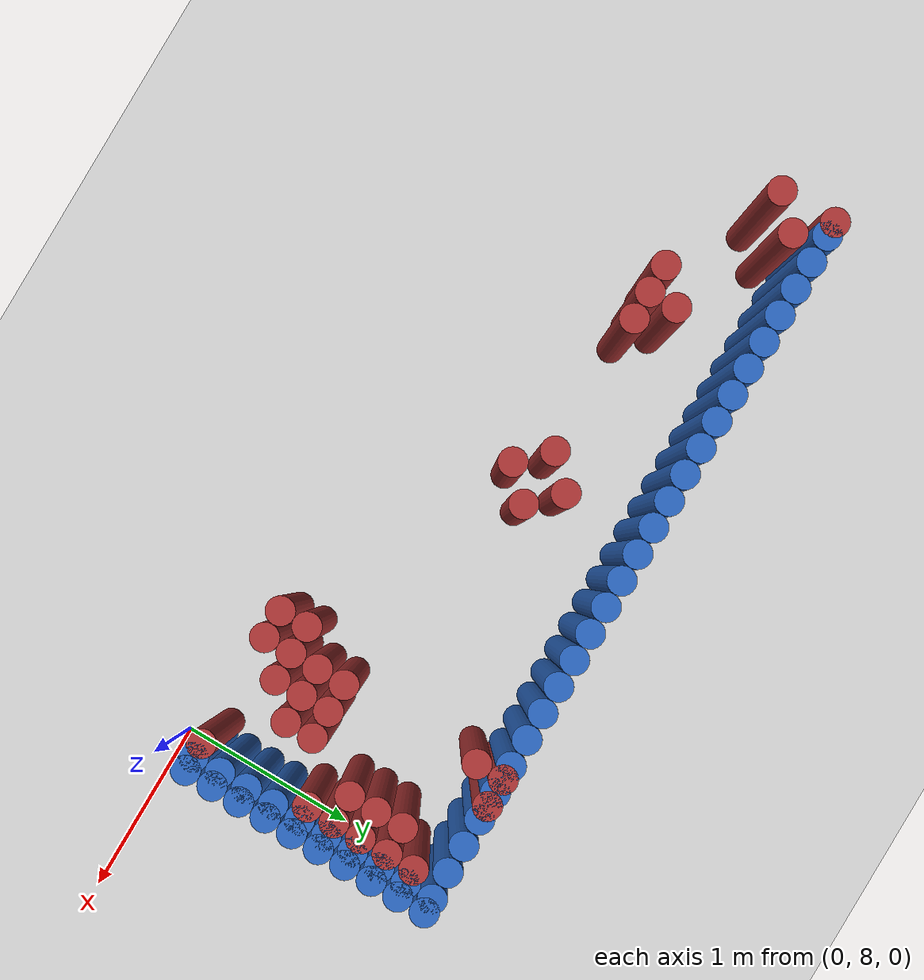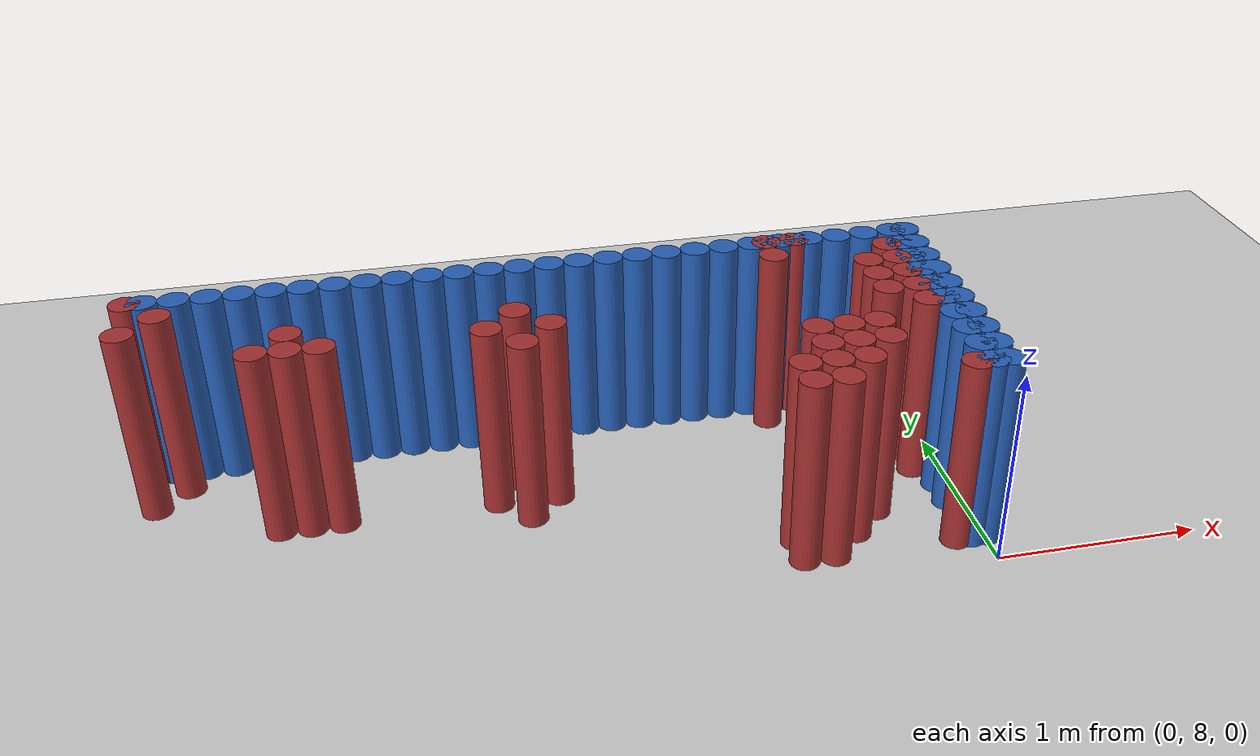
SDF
<sdf version="1.6">
 <world name="barn_world">
  <model name="ground_plane">
   <static>1</static>
   <link name="link">
    <collision name="collision">
     <geometry><plane><normal>0 0 1</normal><size>100 100</size></plane></geometry>
    </collision>
    <visual name="visual">
     <geometry><plane><normal>0 0 1</normal><size>100 100</size></plane></geometry>
     <material>
      <script><uri>file://media/materials/scripts/gazebo.material</uri><name>Gazebo/Grey</name></script>
     </material>
    </visual>
   </link>
  </model>
  <model name="unit_cylinder_181">
   <static>1</static>
   <pose>-3.9000 9.2250 0.5 0 0 0</pose>
   <link name="link">
    <collision name="collision">
     <geometry><cylinder><radius>0.075</radius><length>1</length></cylinder></geometry>
    </collision>
    <visual name="visual">
     <geometry><cylinder><radius>0.075</radius><length>1</length></cylinder></geometry>
     <material><ambient>0.648 0.192 0.192 1</ambient><diffuse>0.648 0.192 0.192 1</diffuse></material>
    </visual>
   </link>
  </model>
  <model name="unit_cylinder_182">
   <static>1</static>
   <pose>-3.9000 9.5250 0.5 0 0 0</pose>
   <link name="link">
    <collision name="collision">
     <geometry><cylinder><radius>0.075</radius><length>1</length></cylinder></geometry>
    </collision>
    <visual name="visual">
     <geometry><cylinder><radius>0.075</radius><length>1</length></cylinder></geometry>
     <material><ambient>0.648 0.192 0.192 1</ambient><diffuse>0.648 0.192 0.192 1</diffuse></material>
    </visual>
   </link>
  </model>
  <model name="unit_cylinder_184">
   <static>1</static>
   <pose>-3.7500 9.3750 0.5 0 0 0</pose>
   <link name="link">
    <collision name="collision">
     <geometry><cylinder><radius>0.075</radius><length>1</length></cylinder></geometry>
    </collision>
    <visual name="visual">
     <geometry><cylinder><radius>0.075</radius><length>1</length></cylinder></geometry>
     <material><ambient>0.648 0.192 0.192 1</ambient><diffuse>0.648 0.192 0.192 1</diffuse></material>
    </visual>
   </link>
  </model>
  <model name="unit_cylinder_188">
   <static>1</static>
   <pose>-3.3000 8.9250 0.5 0 0 0</pose>
   <link name="link">
    <collision name="collision">
     <geometry><cylinder><radius>0.075</radius><length>1</length></cylinder></geometry>
    </collision>
    <visual name="visual">
     <geometry><cylinder><radius>0.075</radius><length>1</length></cylinder></geometry>
     <material><ambient>0.648 0.192 0.192 1</ambient><diffuse>0.648 0.192 0.192 1</diffuse></material>
    </visual>
   </link>
  </model>
  <model name="unit_cylinder_192">
   <static>1</static>
   <pose>-3.1500 8.9250 0.5 0 0 0</pose>
   <link name="link">
    <collision name="collision">
     <geometry><cylinder><radius>0.075</radius><length>1</length></cylinder></geometry>
    </collision>
    <visual name="visual">
     <geometry><cylinder><radius>0.075</radius><length>1</length></cylinder></geometry>
     <material><ambient>0.648 0.192 0.192 1</ambient><diffuse>0.648 0.192 0.192 1</diffuse></material>
    </visual>
   </link>
  </model>
  <model name="unit_cylinder_193">
   <static>1</static>
   <pose>-3.1500 9.0750 0.5 0 0 0</pose>
   <link name="link">
    <collision name="collision">
     <geometry><cylinder><radius>0.075</radius><length>1</length></cylinder></geometry>
    </collision>
    <visual name="visual">
     <geometry><cylinder><radius>0.075</radius><length>1</length></cylinder></geometry>
     <material><ambient>0.648 0.192 0.192 1</ambient><diffuse>0.648 0.192 0.192 1</diffuse></material>
    </visual>
   </link>
  </model>
  <model name="unit_cylinder_196">
   <static>1</static>
   <pose>-3.0000 8.9250 0.5 0 0 0</pose>
   <link name="link">
    <collision name="collision">
     <geometry><cylinder><radius>0.075</radius><length>1</length></cylinder></geometry>
    </collision>
    <visual name="visual">
     <geometry><cylinder><radius>0.075</radius><length>1</length></cylinder></geometry>
     <material><ambient>0.648 0.192 0.192 1</ambient><diffuse>0.648 0.192 0.192 1</diffuse></material>
    </visual>
   </link>
  </model>
  <model name="unit_cylinder_206">
   <static>1</static>
   <pose>-2.2500 8.9250 0.5 0 0 0</pose>
   <link name="link">
    <collision name="collision">
     <geometry><cylinder><radius>0.075</radius><length>1</length></cylinder></geometry>
    </collision>
    <visual name="visual">
     <geometry><cylinder><radius>0.075</radius><length>1</length></cylinder></geometry>
     <material><ambient>0.648 0.192 0.192 1</ambient><diffuse>0.648 0.192 0.192 1</diffuse></material>
    </visual>
   </link>
  </model>
  <model name="unit_cylinder_211">
   <static>1</static>
   <pose>-2.1000 8.7750 0.5 0 0 0</pose>
   <link name="link">
    <collision name="collision">
     <geometry><cylinder><radius>0.075</radius><length>1</length></cylinder></geometry>
    </collision>
    <visual name="visual">
     <geometry><cylinder><radius>0.075</radius><length>1</length></cylinder></geometry>
     <material><ambient>0.648 0.192 0.192 1</ambient><diffuse>0.648 0.192 0.192 1</diffuse></material>
    </visual>
   </link>
  </model>
  <model name="unit_cylinder_212">
   <static>1</static>
   <pose>-2.1000 9.0750 0.5 0 0 0</pose>
   <link name="link">
    <collision name="collision">
     <geometry><cylinder><radius>0.075</radius><length>1</length></cylinder></geometry>
    </collision>
    <visual name="visual">
     <geometry><cylinder><radius>0.075</radius><length>1</length></cylinder></geometry>
     <material><ambient>0.648 0.192 0.192 1</ambient><diffuse>0.648 0.192 0.192 1</diffuse></material>
    </visual>
   </link>
  </model>
  <model name="unit_cylinder_213">
   <static>1</static>
   <pose>-1.9500 8.9250 0.5 0 0 0</pose>
   <link name="link">
    <collision name="collision">
     <geometry><cylinder><radius>0.075</radius><length>1</length></cylinder></geometry>
    </collision>
    <visual name="visual">
     <geometry><cylinder><radius>0.075</radius><length>1</length></cylinder></geometry>
     <material><ambient>0.648 0.192 0.192 1</ambient><diffuse>0.648 0.192 0.192 1</diffuse></material>
    </visual>
   </link>
  </model>
  <model name="unit_cylinder_215">
   <static>1</static>
   <pose>-0.9000 8.1750 0.5 0 0 0</pose>
   <link name="link">
    <collision name="collision">
     <geometry><cylinder><radius>0.075</radius><length>1</length></cylinder></geometry>
    </collision>
    <visual name="visual">
     <geometry><cylinder><radius>0.075</radius><length>1</length></cylinder></geometry>
     <material><ambient>0.648 0.192 0.192 1</ambient><diffuse>0.648 0.192 0.192 1</diffuse></material>
    </visual>
   </link>
  </model>
  <model name="unit_cylinder_216">
   <static>1</static>
   <pose>-0.9000 8.3250 0.5 0 0 0</pose>
   <link name="link">
    <collision name="collision">
     <geometry><cylinder><radius>0.075</radius><length>1</length></cylinder></geometry>
    </collision>
    <visual name="visual">
     <geometry><cylinder><radius>0.075</radius><length>1</length></cylinder></geometry>
     <material><ambient>0.648 0.192 0.192 1</ambient><diffuse>0.648 0.192 0.192 1</diffuse></material>
    </visual>
   </link>
  </model>
  <model name="unit_cylinder_220">
   <static>1</static>
   <pose>-0.7500 8.1750 0.5 0 0 0</pose>
   <link name="link">
    <collision name="collision">
     <geometry><cylinder><radius>0.075</radius><length>1</length></cylinder></geometry>
    </collision>
    <visual name="visual">
     <geometry><cylinder><radius>0.075</radius><length>1</length></cylinder></geometry>
     <material><ambient>0.648 0.192 0.192 1</ambient><diffuse>0.648 0.192 0.192 1</diffuse></material>
    </visual>
   </link>
  </model>
  <model name="unit_cylinder_221">
   <static>1</static>
   <pose>-0.7500 8.3250 0.5 0 0 0</pose>
   <link name="link">
    <collision name="collision">
     <geometry><cylinder><radius>0.075</radius><length>1</length></cylinder></geometry>
    </collision>
    <visual name="visual">
     <geometry><cylinder><radius>0.075</radius><length>1</length></cylinder></geometry>
     <material><ambient>0.648 0.192 0.192 1</ambient><diffuse>0.648 0.192 0.192 1</diffuse></material>
    </visual>
   </link>
  </model>
  <model name="unit_cylinder_222">
   <static>1</static>
   <pose>-0.7500 8.4750 0.5 0 0 0</pose>
   <link name="link">
    <collision name="collision">
     <geometry><cylinder><radius>0.075</radius><length>1</length></cylinder></geometry>
    </collision>
    <visual name="visual">
     <geometry><cylinder><radius>0.075</radius><length>1</length></cylinder></geometry>
     <material><ambient>0.648 0.192 0.192 1</ambient><diffuse>0.648 0.192 0.192 1</diffuse></material>
    </visual>
   </link>
  </model>
  <model name="unit_cylinder_223">
   <static>1</static>
   <pose>-0.7500 8.6250 0.5 0 0 0</pose>
   <link name="link">
    <collision name="collision">
     <geometry><cylinder><radius>0.075</radius><length>1</length></cylinder></geometry>
    </collision>
    <visual name="visual">
     <geometry><cylinder><radius>0.075</radius><length>1</length></cylinder></geometry>
     <material><ambient>0.648 0.192 0.192 1</ambient><diffuse>0.648 0.192 0.192 1</diffuse></material>
    </visual>
   </link>
  </model>
  <model name="unit_cylinder_224">
   <static>1</static>
   <pose>-0.7500 9.3750 0.5 0 0 0</pose>
   <link name="link">
    <collision name="collision">
     <geometry><cylinder><radius>0.075</radius><length>1</length></cylinder></geometry>
    </collision>
    <visual name="visual">
     <geometry><cylinder><radius>0.075</radius><length>1</length></cylinder></geometry>
     <material><ambient>0.648 0.192 0.192 1</ambient><diffuse>0.648 0.192 0.192 1</diffuse></material>
    </visual>
   </link>
  </model>
  <model name="unit_cylinder_225">
   <static>1</static>
   <pose>-0.7500 9.5250 0.5 0 0 0</pose>
   <link name="link">
    <collision name="collision">
     <geometry><cylinder><radius>0.075</radius><length>1</length></cylinder></geometry>
    </collision>
    <visual name="visual">
     <geometry><cylinder><radius>0.075</radius><length>1</length></cylinder></geometry>
     <material><ambient>0.648 0.192 0.192 1</ambient><diffuse>0.648 0.192 0.192 1</diffuse></material>
    </visual>
   </link>
  </model>
  <model name="unit_cylinder_231">
   <static>1</static>
   <pose>-0.6000 8.3250 0.5 0 0 0</pose>
   <link name="link">
    <collision name="collision">
     <geometry><cylinder><radius>0.075</radius><length>1</length></cylinder></geometry>
    </collision>
    <visual name="visual">
     <geometry><cylinder><radius>0.075</radius><length>1</length></cylinder></geometry>
     <material><ambient>0.648 0.192 0.192 1</ambient><diffuse>0.648 0.192 0.192 1</diffuse></material>
    </visual>
   </link>
  </model>
  <model name="unit_cylinder_232">
   <static>1</static>
   <pose>-0.6000 8.4750 0.5 0 0 0</pose>
   <link name="link">
    <collision name="collision">
     <geometry><cylinder><radius>0.075</radius><length>1</length></cylinder></geometry>
    </collision>
    <visual name="visual">
     <geometry><cylinder><radius>0.075</radius><length>1</length></cylinder></geometry>
     <material><ambient>0.648 0.192 0.192 1</ambient><diffuse>0.648 0.192 0.192 1</diffuse></material>
    </visual>
   </link>
  </model>
  <model name="unit_cylinder_233">
   <static>1</static>
   <pose>-0.6000 8.6250 0.5 0 0 0</pose>
   <link name="link">
    <collision name="collision">
     <geometry><cylinder><radius>0.075</radius><length>1</length></cylinder></geometry>
    </collision>
    <visual name="visual">
     <geometry><cylinder><radius>0.075</radius><length>1</length></cylinder></geometry>
     <material><ambient>0.648 0.192 0.192 1</ambient><diffuse>0.648 0.192 0.192 1</diffuse></material>
    </visual>
   </link>
  </model>
  <model name="unit_cylinder_234">
   <static>1</static>
   <pose>-0.6000 9.5250 0.5 0 0 0</pose>
   <link name="link">
    <collision name="collision">
     <geometry><cylinder><radius>0.075</radius><length>1</length></cylinder></geometry>
    </collision>
    <visual name="visual">
     <geometry><cylinder><radius>0.075</radius><length>1</length></cylinder></geometry>
     <material><ambient>0.648 0.192 0.192 1</ambient><diffuse>0.648 0.192 0.192 1</diffuse></material>
    </visual>
   </link>
  </model>
  <model name="unit_cylinder_240">
   <static>1</static>
   <pose>-0.4500 8.4750 0.5 0 0 0</pose>
   <link name="link">
    <collision name="collision">
     <geometry><cylinder><radius>0.075</radius><length>1</length></cylinder></geometry>
    </collision>
    <visual name="visual">
     <geometry><cylinder><radius>0.075</radius><length>1</length></cylinder></geometry>
     <material><ambient>0.648 0.192 0.192 1</ambient><diffuse>0.648 0.192 0.192 1</diffuse></material>
    </visual>
   </link>
  </model>
  <model name="unit_cylinder_241">
   <static>1</static>
   <pose>-0.4500 8.6250 0.5 0 0 0</pose>
   <link name="link">
    <collision name="collision">
     <geometry><cylinder><radius>0.075</radius><length>1</length></cylinder></geometry>
    </collision>
    <visual name="visual">
     <geometry><cylinder><radius>0.075</radius><length>1</length></cylinder></geometry>
     <material><ambient>0.648 0.192 0.192 1</ambient><diffuse>0.648 0.192 0.192 1</diffuse></material>
    </visual>
   </link>
  </model>
  <model name="unit_cylinder_249">
   <static>1</static>
   <pose>-0.3000 8.9250 0.5 0 0 0</pose>
   <link name="link">
    <collision name="collision">
     <geometry><cylinder><radius>0.075</radius><length>1</length></cylinder></geometry>
    </collision>
    <visual name="visual">
     <geometry><cylinder><radius>0.075</radius><length>1</length></cylinder></geometry>
     <material><ambient>0.648 0.192 0.192 1</ambient><diffuse>0.648 0.192 0.192 1</diffuse></material>
    </visual>
   </link>
  </model>
  <model name="unit_cylinder_250">
   <static>1</static>
   <pose>-0.3000 9.0750 0.5 0 0 0</pose>
   <link name="link">
    <collision name="collision">
     <geometry><cylinder><radius>0.075</radius><length>1</length></cylinder></geometry>
    </collision>
    <visual name="visual">
     <geometry><cylinder><radius>0.075</radius><length>1</length></cylinder></geometry>
     <material><ambient>0.648 0.192 0.192 1</ambient><diffuse>0.648 0.192 0.192 1</diffuse></material>
    </visual>
   </link>
  </model>
  <model name="unit_cylinder_251">
   <static>1</static>
   <pose>-0.3000 9.2250 0.5 0 0 0</pose>
   <link name="link">
    <collision name="collision">
     <geometry><cylinder><radius>0.075</radius><length>1</length></cylinder></geometry>
    </collision>
    <visual name="visual">
     <geometry><cylinder><radius>0.075</radius><length>1</length></cylinder></geometry>
     <material><ambient>0.648 0.192 0.192 1</ambient><diffuse>0.648 0.192 0.192 1</diffuse></material>
    </visual>
   </link>
  </model>
  <model name="unit_cylinder_268">
   <static>1</static>
   <pose>-0.1500 8.1750 0.5 0 0 0</pose>
   <link name="link">
    <collision name="collision">
     <geometry><cylinder><radius>0.075</radius><length>1</length></cylinder></geometry>
    </collision>
    <visual name="visual">
     <geometry><cylinder><radius>0.075</radius><length>1</length></cylinder></geometry>
     <material><ambient>0.648 0.192 0.192 1</ambient><diffuse>0.648 0.192 0.192 1</diffuse></material>
    </visual>
   </link>
  </model>
  <model name="unit_cylinder_269">
   <static>1</static>
   <pose>-0.1500 8.7750 0.5 0 0 0</pose>
   <link name="link">
    <collision name="collision">
     <geometry><cylinder><radius>0.075</radius><length>1</length></cylinder></geometry>
    </collision>
    <visual name="visual">
     <geometry><cylinder><radius>0.075</radius><length>1</length></cylinder></geometry>
     <material><ambient>0.648 0.192 0.192 1</ambient><diffuse>0.648 0.192 0.192 1</diffuse></material>
    </visual>
   </link>
  </model>
  <model name="unit_cylinder_270">
   <static>1</static>
   <pose>-0.1500 8.9250 0.5 0 0 0</pose>
   <link name="link">
    <collision name="collision">
     <geometry><cylinder><radius>0.075</radius><length>1</length></cylinder></geometry>
    </collision>
    <visual name="visual">
     <geometry><cylinder><radius>0.075</radius><length>1</length></cylinder></geometry>
     <material><ambient>0.648 0.192 0.192 1</ambient><diffuse>0.648 0.192 0.192 1</diffuse></material>
    </visual>
   </link>
  </model>
  <model name="unit_cylinder_271">
   <static>1</static>
   <pose>-0.1500 9.0750 0.5 0 0 0</pose>
   <link name="link">
    <collision name="collision">
     <geometry><cylinder><radius>0.075</radius><length>1</length></cylinder></geometry>
    </collision>
    <visual name="visual">
     <geometry><cylinder><radius>0.075</radius><length>1</length></cylinder></geometry>
     <material><ambient>0.648 0.192 0.192 1</ambient><diffuse>0.648 0.192 0.192 1</diffuse></material>
    </visual>
   </link>
  </model>
  <model name="unit_cylinder_272">
   <static>1</static>
   <pose>-0.1500 9.2250 0.5 0 0 0</pose>
   <link name="link">
    <collision name="collision">
     <geometry><cylinder><radius>0.075</radius><length>1</length></cylinder></geometry>
    </collision>
    <visual name="visual">
     <geometry><cylinder><radius>0.075</radius><length>1</length></cylinder></geometry>
     <material><ambient>0.648 0.192 0.192 1</ambient><diffuse>0.648 0.192 0.192 1</diffuse></material>
    </visual>
   </link>
  </model>
  <model name="unit_cylinder_273">
   <static>1</static>
   <pose>-0.1500 9.3750 0.5 0 0 0</pose>
   <link name="link">
    <collision name="collision">
     <geometry><cylinder><radius>0.075</radius><length>1</length></cylinder></geometry>
    </collision>
    <visual name="visual">
     <geometry><cylinder><radius>0.075</radius><length>1</length></cylinder></geometry>
     <material><ambient>0.648 0.192 0.192 1</ambient><diffuse>0.648 0.192 0.192 1</diffuse></material>
    </visual>
   </link>
  </model>
  <model name="unit_cylinder_294">
   <static>1</static>
   <pose>0.0000 8.1750 0.5 0 0 0</pose>
   <link name="link">
    <collision name="collision">
     <geometry><cylinder><radius>0.075</radius><length>1</length></cylinder></geometry>
    </collision>
    <visual name="visual">
     <geometry><cylinder><radius>0.075</radius><length>1</length></cylinder></geometry>
     <material><ambient>0.152 0.379 0.72 1</ambient><diffuse>0.152 0.379 0.72 1</diffuse></material>
    </visual>
   </link>
  </model>
  <model name="unit_cylinder_295">
   <static>1</static>
   <pose>0.0000 8.3250 0.5 0 0 0</pose>
   <link name="link">
    <collision name="collision">
     <geometry><cylinder><radius>0.075</radius><length>1</length></cylinder></geometry>
    </collision>
    <visual name="visual">
     <geometry><cylinder><radius>0.075</radius><length>1</length></cylinder></geometry>
     <material><ambient>0.152 0.379 0.72 1</ambient><diffuse>0.152 0.379 0.72 1</diffuse></material>
    </visual>
   </link>
  </model>
  <model name="unit_cylinder_296">
   <static>1</static>
   <pose>0.0000 8.4750 0.5 0 0 0</pose>
   <link name="link">
    <collision name="collision">
     <geometry><cylinder><radius>0.075</radius><length>1</length></cylinder></geometry>
    </collision>
    <visual name="visual">
     <geometry><cylinder><radius>0.075</radius><length>1</length></cylinder></geometry>
     <material><ambient>0.152 0.379 0.72 1</ambient><diffuse>0.152 0.379 0.72 1</diffuse></material>
    </visual>
   </link>
  </model>
  <model name="unit_cylinder_297">
   <static>1</static>
   <pose>0.0000 8.6250 0.5 0 0 0</pose>
   <link name="link">
    <collision name="collision">
     <geometry><cylinder><radius>0.075</radius><length>1</length></cylinder></geometry>
    </collision>
    <visual name="visual">
     <geometry><cylinder><radius>0.075</radius><length>1</length></cylinder></geometry>
     <material><ambient>0.152 0.379 0.72 1</ambient><diffuse>0.152 0.379 0.72 1</diffuse></material>
    </visual>
   </link>
  </model>
  <model name="unit_cylinder_298">
   <static>1</static>
   <pose>0.0000 8.7750 0.5 0 0 0</pose>
   <link name="link">
    <collision name="collision">
     <geometry><cylinder><radius>0.075</radius><length>1</length></cylinder></geometry>
    </collision>
    <visual name="visual">
     <geometry><cylinder><radius>0.075</radius><length>1</length></cylinder></geometry>
     <material><ambient>0.152 0.379 0.72 1</ambient><diffuse>0.152 0.379 0.72 1</diffuse></material>
    </visual>
   </link>
  </model>
  <model name="unit_cylinder_299">
   <static>1</static>
   <pose>0.0000 8.9250 0.5 0 0 0</pose>
   <link name="link">
    <collision name="collision">
     <geometry><cylinder><radius>0.075</radius><length>1</length></cylinder></geometry>
    </collision>
    <visual name="visual">
     <geometry><cylinder><radius>0.075</radius><length>1</length></cylinder></geometry>
     <material><ambient>0.152 0.379 0.72 1</ambient><diffuse>0.152 0.379 0.72 1</diffuse></material>
    </visual>
   </link>
  </model>
  <model name="unit_cylinder_300">
   <static>1</static>
   <pose>0.0000 9.0750 0.5 0 0 0</pose>
   <link name="link">
    <collision name="collision">
     <geometry><cylinder><radius>0.075</radius><length>1</length></cylinder></geometry>
    </collision>
    <visual name="visual">
     <geometry><cylinder><radius>0.075</radius><length>1</length></cylinder></geometry>
     <material><ambient>0.152 0.379 0.72 1</ambient><diffuse>0.152 0.379 0.72 1</diffuse></material>
    </visual>
   </link>
  </model>
  <model name="unit_cylinder_301">
   <static>1</static>
   <pose>0.0000 9.2250 0.5 0 0 0</pose>
   <link name="link">
    <collision name="collision">
     <geometry><cylinder><radius>0.075</radius><length>1</length></cylinder></geometry>
    </collision>
    <visual name="visual">
     <geometry><cylinder><radius>0.075</radius><length>1</length></cylinder></geometry>
     <material><ambient>0.152 0.379 0.72 1</ambient><diffuse>0.152 0.379 0.72 1</diffuse></material>
    </visual>
   </link>
  </model>
  <model name="unit_cylinder_302">
   <static>1</static>
   <pose>0.0000 9.3750 0.5 0 0 0</pose>
   <link name="link">
    <collision name="collision">
     <geometry><cylinder><radius>0.075</radius><length>1</length></cylinder></geometry>
    </collision>
    <visual name="visual">
     <geometry><cylinder><radius>0.075</radius><length>1</length></cylinder></geometry>
     <material><ambient>0.152 0.379 0.72 1</ambient><diffuse>0.152 0.379 0.72 1</diffuse></material>
    </visual>
   </link>
  </model>
  <model name="unit_cylinder_303">
   <static>1</static>
   <pose>0.0000 9.5250 0.5 0 0 0</pose>
   <link name="link">
    <collision name="collision">
     <geometry><cylinder><radius>0.075</radius><length>1</length></cylinder></geometry>
    </collision>
    <visual name="visual">
     <geometry><cylinder><radius>0.075</radius><length>1</length></cylinder></geometry>
     <material><ambient>0.152 0.379 0.72 1</ambient><diffuse>0.152 0.379 0.72 1</diffuse></material>
    </visual>
   </link>
  </model>
  <model name="unit_cylinder_304">
   <static>1</static>
   <pose>-0.0750 9.5250 0.5 0 0 0</pose>
   <link name="link">
    <collision name="collision">
     <geometry><cylinder><radius>0.075</radius><length>1</length></cylinder></geometry>
    </collision>
    <visual name="visual">
     <geometry><cylinder><radius>0.075</radius><length>1</length></cylinder></geometry>
     <material><ambient>0.152 0.379 0.72 1</ambient><diffuse>0.152 0.379 0.72 1</diffuse></material>
    </visual>
   </link>
  </model>
  <model name="unit_cylinder_305">
   <static>1</static>
   <pose>-0.2250 9.5250 0.5 0 0 0</pose>
   <link name="link">
    <collision name="collision">
     <geometry><cylinder><radius>0.075</radius><length>1</length></cylinder></geometry>
    </collision>
    <visual name="visual">
     <geometry><cylinder><radius>0.075</radius><length>1</length></cylinder></geometry>
     <material><ambient>0.152 0.379 0.72 1</ambient><diffuse>0.152 0.379 0.72 1</diffuse></material>
    </visual>
   </link>
  </model>
  <model name="unit_cylinder_306">
   <static>1</static>
   <pose>-0.3750 9.5250 0.5 0 0 0</pose>
   <link name="link">
    <collision name="collision">
     <geometry><cylinder><radius>0.075</radius><length>1</length></cylinder></geometry>
    </collision>
    <visual name="visual">
     <geometry><cylinder><radius>0.075</radius><length>1</length></cylinder></geometry>
     <material><ambient>0.152 0.379 0.72 1</ambient><diffuse>0.152 0.379 0.72 1</diffuse></material>
    </visual>
   </link>
  </model>
  <model name="unit_cylinder_307">
   <static>1</static>
   <pose>-0.5250 9.5250 0.5 0 0 0</pose>
   <link name="link">
    <collision name="collision">
     <geometry><cylinder><radius>0.075</radius><length>1</length></cylinder></geometry>
    </collision>
    <visual name="visual">
     <geometry><cylinder><radius>0.075</radius><length>1</length></cylinder></geometry>
     <material><ambient>0.152 0.379 0.72 1</ambient><diffuse>0.152 0.379 0.72 1</diffuse></material>
    </visual>
   </link>
  </model>
  <model name="unit_cylinder_308">
   <static>1</static>
   <pose>-0.6750 9.5250 0.5 0 0 0</pose>
   <link name="link">
    <collision name="collision">
     <geometry><cylinder><radius>0.075</radius><length>1</length></cylinder></geometry>
    </collision>
    <visual name="visual">
     <geometry><cylinder><radius>0.075</radius><length>1</length></cylinder></geometry>
     <material><ambient>0.152 0.379 0.72 1</ambient><diffuse>0.152 0.379 0.72 1</diffuse></material>
    </visual>
   </link>
  </model>
  <model name="unit_cylinder_309">
   <static>1</static>
   <pose>-0.8250 9.5250 0.5 0 0 0</pose>
   <link name="link">
    <collision name="collision">
     <geometry><cylinder><radius>0.075</radius><length>1</length></cylinder></geometry>
    </collision>
    <visual name="visual">
     <geometry><cylinder><radius>0.075</radius><length>1</length></cylinder></geometry>
     <material><ambient>0.152 0.379 0.72 1</ambient><diffuse>0.152 0.379 0.72 1</diffuse></material>
    </visual>
   </link>
  </model>
  <model name="unit_cylinder_310">
   <static>1</static>
   <pose>-0.9750 9.5250 0.5 0 0 0</pose>
   <link name="link">
    <collision name="collision">
     <geometry><cylinder><radius>0.075</radius><length>1</length></cylinder></geometry>
    </collision>
    <visual name="visual">
     <geometry><cylinder><radius>0.075</radius><length>1</length></cylinder></geometry>
     <material><ambient>0.152 0.379 0.72 1</ambient><diffuse>0.152 0.379 0.72 1</diffuse></material>
    </visual>
   </link>
  </model>
  <model name="unit_cylinder_311">
   <static>1</static>
   <pose>-1.1250 9.5250 0.5 0 0 0</pose>
   <link name="link">
    <collision name="collision">
     <geometry><cylinder><radius>0.075</radius><length>1</length></cylinder></geometry>
    </collision>
    <visual name="visual">
     <geometry><cylinder><radius>0.075</radius><length>1</length></cylinder></geometry>
     <material><ambient>0.152 0.379 0.72 1</ambient><diffuse>0.152 0.379 0.72 1</diffuse></material>
    </visual>
   </link>
  </model>
  <model name="unit_cylinder_312">
   <static>1</static>
   <pose>-1.2750 9.5250 0.5 0 0 0</pose>
   <link name="link">
    <collision name="collision">
     <geometry><cylinder><radius>0.075</radius><length>1</length></cylinder></geometry>
    </collision>
    <visual name="visual">
     <geometry><cylinder><radius>0.075</radius><length>1</length></cylinder></geometry>
     <material><ambient>0.152 0.379 0.72 1</ambient><diffuse>0.152 0.379 0.72 1</diffuse></material>
    </visual>
   </link>
  </model>
  <model name="unit_cylinder_313">
   <static>1</static>
   <pose>-1.4250 9.5250 0.5 0 0 0</pose>
   <link name="link">
    <collision name="collision">
     <geometry><cylinder><radius>0.075</radius><length>1</length></cylinder></geometry>
    </collision>
    <visual name="visual">
     <geometry><cylinder><radius>0.075</radius><length>1</length></cylinder></geometry>
     <material><ambient>0.152 0.379 0.72 1</ambient><diffuse>0.152 0.379 0.72 1</diffuse></material>
    </visual>
   </link>
  </model>
  <model name="unit_cylinder_314">
   <static>1</static>
   <pose>-1.5750 9.5250 0.5 0 0 0</pose>
   <link name="link">
    <collision name="collision">
     <geometry><cylinder><radius>0.075</radius><length>1</length></cylinder></geometry>
    </collision>
    <visual name="visual">
     <geometry><cylinder><radius>0.075</radius><length>1</length></cylinder></geometry>
     <material><ambient>0.152 0.379 0.72 1</ambient><diffuse>0.152 0.379 0.72 1</diffuse></material>
    </visual>
   </link>
  </model>
  <model name="unit_cylinder_315">
   <static>1</static>
   <pose>-1.7250 9.5250 0.5 0 0 0</pose>
   <link name="link">
    <collision name="collision">
     <geometry><cylinder><radius>0.075</radius><length>1</length></cylinder></geometry>
    </collision>
    <visual name="visual">
     <geometry><cylinder><radius>0.075</radius><length>1</length></cylinder></geometry>
     <material><ambient>0.152 0.379 0.72 1</ambient><diffuse>0.152 0.379 0.72 1</diffuse></material>
    </visual>
   </link>
  </model>
  <model name="unit_cylinder_316">
   <static>1</static>
   <pose>-1.8750 9.5250 0.5 0 0 0</pose>
   <link name="link">
    <collision name="collision">
     <geometry><cylinder><radius>0.075</radius><length>1</length></cylinder></geometry>
    </collision>
    <visual name="visual">
     <geometry><cylinder><radius>0.075</radius><length>1</length></cylinder></geometry>
     <material><ambient>0.152 0.379 0.72 1</ambient><diffuse>0.152 0.379 0.72 1</diffuse></material>
    </visual>
   </link>
  </model>
  <model name="unit_cylinder_317">
   <static>1</static>
   <pose>-2.0250 9.5250 0.5 0 0 0</pose>
   <link name="link">
    <collision name="collision">
     <geometry><cylinder><radius>0.075</radius><length>1</length></cylinder></geometry>
    </collision>
    <visual name="visual">
     <geometry><cylinder><radius>0.075</radius><length>1</length></cylinder></geometry>
     <material><ambient>0.152 0.379 0.72 1</ambient><diffuse>0.152 0.379 0.72 1</diffuse></material>
    </visual>
   </link>
  </model>
  <model name="unit_cylinder_318">
   <static>1</static>
   <pose>-2.1750 9.5250 0.5 0 0 0</pose>
   <link name="link">
    <collision name="collision">
     <geometry><cylinder><radius>0.075</radius><length>1</length></cylinder></geometry>
    </collision>
    <visual name="visual">
     <geometry><cylinder><radius>0.075</radius><length>1</length></cylinder></geometry>
     <material><ambient>0.152 0.379 0.72 1</ambient><diffuse>0.152 0.379 0.72 1</diffuse></material>
    </visual>
   </link>
  </model>
  <model name="unit_cylinder_319">
   <static>1</static>
   <pose>-2.3250 9.5250 0.5 0 0 0</pose>
   <link name="link">
    <collision name="collision">
     <geometry><cylinder><radius>0.075</radius><length>1</length></cylinder></geometry>
    </collision>
    <visual name="visual">
     <geometry><cylinder><radius>0.075</radius><length>1</length></cylinder></geometry>
     <material><ambient>0.152 0.379 0.72 1</ambient><diffuse>0.152 0.379 0.72 1</diffuse></material>
    </visual>
   </link>
  </model>
  <model name="unit_cylinder_320">
   <static>1</static>
   <pose>-2.4750 9.5250 0.5 0 0 0</pose>
   <link name="link">
    <collision name="collision">
     <geometry><cylinder><radius>0.075</radius><length>1</length></cylinder></geometry>
    </collision>
    <visual name="visual">
     <geometry><cylinder><radius>0.075</radius><length>1</length></cylinder></geometry>
     <material><ambient>0.152 0.379 0.72 1</ambient><diffuse>0.152 0.379 0.72 1</diffuse></material>
    </visual>
   </link>
  </model>
  <model name="unit_cylinder_321">
   <static>1</static>
   <pose>-2.6250 9.5250 0.5 0 0 0</pose>
   <link name="link">
    <collision name="collision">
     <geometry><cylinder><radius>0.075</radius><length>1</length></cylinder></geometry>
    </collision>
    <visual name="visual">
     <geometry><cylinder><radius>0.075</radius><length>1</length></cylinder></geometry>
     <material><ambient>0.152 0.379 0.72 1</ambient><diffuse>0.152 0.379 0.72 1</diffuse></material>
    </visual>
   </link>
  </model>
  <model name="unit_cylinder_322">
   <static>1</static>
   <pose>-2.7750 9.5250 0.5 0 0 0</pose>
   <link name="link">
    <collision name="collision">
     <geometry><cylinder><radius>0.075</radius><length>1</length></cylinder></geometry>
    </collision>
    <visual name="visual">
     <geometry><cylinder><radius>0.075</radius><length>1</length></cylinder></geometry>
     <material><ambient>0.152 0.379 0.72 1</ambient><diffuse>0.152 0.379 0.72 1</diffuse></material>
    </visual>
   </link>
  </model>
  <model name="unit_cylinder_323">
   <static>1</static>
   <pose>-2.9250 9.5250 0.5 0 0 0</pose>
   <link name="link">
    <collision name="collision">
     <geometry><cylinder><radius>0.075</radius><length>1</length></cylinder></geometry>
    </collision>
    <visual name="visual">
     <geometry><cylinder><radius>0.075</radius><length>1</length></cylinder></geometry>
     <material><ambient>0.152 0.379 0.72 1</ambient><diffuse>0.152 0.379 0.72 1</diffuse></material>
    </visual>
   </link>
  </model>
  <model name="unit_cylinder_324">
   <static>1</static>
   <pose>-3.0750 9.5250 0.5 0 0 0</pose>
   <link name="link">
    <collision name="collision">
     <geometry><cylinder><radius>0.075</radius><length>1</length></cylinder></geometry>
    </collision>
    <visual name="visual">
     <geometry><cylinder><radius>0.075</radius><length>1</length></cylinder></geometry>
     <material><ambient>0.152 0.379 0.72 1</ambient><diffuse>0.152 0.379 0.72 1</diffuse></material>
    </visual>
   </link>
  </model>
  <model name="unit_cylinder_325">
   <static>1</static>
   <pose>-3.2250 9.5250 0.5 0 0 0</pose>
   <link name="link">
    <collision name="collision">
     <geometry><cylinder><radius>0.075</radius><length>1</length></cylinder></geometry>
    </collision>
    <visual name="visual">
     <geometry><cylinder><radius>0.075</radius><length>1</length></cylinder></geometry>
     <material><ambient>0.152 0.379 0.72 1</ambient><diffuse>0.152 0.379 0.72 1</diffuse></material>
    </visual>
   </link>
  </model>
  <model name="unit_cylinder_326">
   <static>1</static>
   <pose>-3.3750 9.5250 0.5 0 0 0</pose>
   <link name="link">
    <collision name="collision">
     <geometry><cylinder><radius>0.075</radius><length>1</length></cylinder></geometry>
    </collision>
    <visual name="visual">
     <geometry><cylinder><radius>0.075</radius><length>1</length></cylinder></geometry>
     <material><ambient>0.152 0.379 0.72 1</ambient><diffuse>0.152 0.379 0.72 1</diffuse></material>
    </visual>
   </link>
  </model>
  <model name="unit_cylinder_327">
   <static>1</static>
   <pose>-3.5250 9.5250 0.5 0 0 0</pose>
   <link name="link">
    <collision name="collision">
     <geometry><cylinder><radius>0.075</radius><length>1</length></cylinder></geometry>
    </collision>
    <visual name="visual">
     <geometry><cylinder><radius>0.075</radius><length>1</length></cylinder></geometry>
     <material><ambient>0.152 0.379 0.72 1</ambient><diffuse>0.152 0.379 0.72 1</diffuse></material>
    </visual>
   </link>
  </model>
  <model name="unit_cylinder_328">
   <static>1</static>
   <pose>-3.6750 9.5250 0.5 0 0 0</pose>
   <link name="link">
    <collision name="collision">
     <geometry><cylinder><radius>0.075</radius><length>1</length></cylinder></geometry>
    </collision>
    <visual name="visual">
     <geometry><cylinder><radius>0.075</radius><length>1</length></cylinder></geometry>
     <material><ambient>0.152 0.379 0.72 1</ambient><diffuse>0.152 0.379 0.72 1</diffuse></material>
    </visual>
   </link>
  </model>
  <model name="unit_cylinder_329">
   <static>1</static>
   <pose>-3.8250 9.5250 0.5 0 0 0</pose>
   <link name="link">
    <collision name="collision">
     <geometry><cylinder><radius>0.075</radius><length>1</length></cylinder></geometry>
    </collision>
    <visual name="visual">
     <geometry><cylinder><radius>0.075</radius><length>1</length></cylinder></geometry>
     <material><ambient>0.152 0.379 0.72 1</ambient><diffuse>0.152 0.379 0.72 1</diffuse></material>
    </visual>
   </link>
  </model>
  <model name="unit_cylinder_374">
   <static>1</static>
   <pose>-0.0750 8.1750 0.5 0 0 0</pose>
   <link name="link">
    <collision name="collision">
     <geometry><cylinder><radius>0.075</radius><length>1</length></cylinder></geometry>
    </collision>
    <visual name="visual">
     <geometry><cylinder><radius>0.075</radius><length>1</length></cylinder></geometry>
     <material><ambient>0.152 0.379 0.72 1</ambient><diffuse>0.152 0.379 0.72 1</diffuse></material>
    </visual>
   </link>
  </model>
  <model name="unit_cylinder_376">
   <static>1</static>
   <pose>-0.0750 8.3250 0.5 0 0 0</pose>
   <link name="link">
    <collision name="collision">
     <geometry><cylinder><radius>0.075</radius><length>1</length></cylinder></geometry>
    </collision>
    <visual name="visual">
     <geometry><cylinder><radius>0.075</radius><length>1</length></cylinder></geometry>
     <material><ambient>0.152 0.379 0.72 1</ambient><diffuse>0.152 0.379 0.72 1</diffuse></material>
    </visual>
   </link>
  </model>
  <model name="unit_cylinder_378">
   <static>1</static>
   <pose>-0.0750 8.4750 0.5 0 0 0</pose>
   <link name="link">
    <collision name="collision">
     <geometry><cylinder><radius>0.075</radius><length>1</length></cylinder></geometry>
    </collision>
    <visual name="visual">
     <geometry><cylinder><radius>0.075</radius><length>1</length></cylinder></geometry>
     <material><ambient>0.152 0.379 0.72 1</ambient><diffuse>0.152 0.379 0.72 1</diffuse></material>
    </visual>
   </link>
  </model>
  <model name="unit_cylinder_380">
   <static>1</static>
   <pose>-0.0750 8.6250 0.5 0 0 0</pose>
   <link name="link">
    <collision name="collision">
     <geometry><cylinder><radius>0.075</radius><length>1</length></cylinder></geometry>
    </collision>
    <visual name="visual">
     <geometry><cylinder><radius>0.075</radius><length>1</length></cylinder></geometry>
     <material><ambient>0.152 0.379 0.72 1</ambient><diffuse>0.152 0.379 0.72 1</diffuse></material>
    </visual>
   </link>
  </model>
  <model name="unit_cylinder_382">
   <static>1</static>
   <pose>-0.0750 8.7750 0.5 0 0 0</pose>
   <link name="link">
    <collision name="collision">
     <geometry><cylinder><radius>0.075</radius><length>1</length></cylinder></geometry>
    </collision>
    <visual name="visual">
     <geometry><cylinder><radius>0.075</radius><length>1</length></cylinder></geometry>
     <material><ambient>0.152 0.379 0.72 1</ambient><diffuse>0.152 0.379 0.72 1</diffuse></material>
    </visual>
   </link>
  </model>
  <model name="unit_cylinder_384">
   <static>1</static>
   <pose>-0.0750 8.9250 0.5 0 0 0</pose>
   <link name="link">
    <collision name="collision">
     <geometry><cylinder><radius>0.075</radius><length>1</length></cylinder></geometry>
    </collision>
    <visual name="visual">
     <geometry><cylinder><radius>0.075</radius><length>1</length></cylinder></geometry>
     <material><ambient>0.152 0.379 0.72 1</ambient><diffuse>0.152 0.379 0.72 1</diffuse></material>
    </visual>
   </link>
  </model>
  <model name="unit_cylinder_386">
   <static>1</static>
   <pose>-0.0750 9.0750 0.5 0 0 0</pose>
   <link name="link">
    <collision name="collision">
     <geometry><cylinder><radius>0.075</radius><length>1</length></cylinder></geometry>
    </collision>
    <visual name="visual">
     <geometry><cylinder><radius>0.075</radius><length>1</length></cylinder></geometry>
     <material><ambient>0.152 0.379 0.72 1</ambient><diffuse>0.152 0.379 0.72 1</diffuse></material>
    </visual>
   </link>
  </model>
  <model name="unit_cylinder_388">
   <static>1</static>
   <pose>-0.0750 9.2250 0.5 0 0 0</pose>
   <link name="link">
    <collision name="collision">
     <geometry><cylinder><radius>0.075</radius><length>1</length></cylinder></geometry>
    </collision>
    <visual name="visual">
     <geometry><cylinder><radius>0.075</radius><length>1</length></cylinder></geometry>
     <material><ambient>0.152 0.379 0.72 1</ambient><diffuse>0.152 0.379 0.72 1</diffuse></material>
    </visual>
   </link>
  </model>
  <model name="unit_cylinder_390">
   <static>1</static>
   <pose>-0.0750 9.3750 0.5 0 0 0</pose>
   <link name="link">
    <collision name="collision">
     <geometry><cylinder><radius>0.075</radius><length>1</length></cylinder></geometry>
    </collision>
    <visual name="visual">
     <geometry><cylinder><radius>0.075</radius><length>1</length></cylinder></geometry>
     <material><ambient>0.152 0.379 0.72 1</ambient><diffuse>0.152 0.379 0.72 1</diffuse></material>
    </visual>
   </link>
  </model>
 </world>
</sdf>
